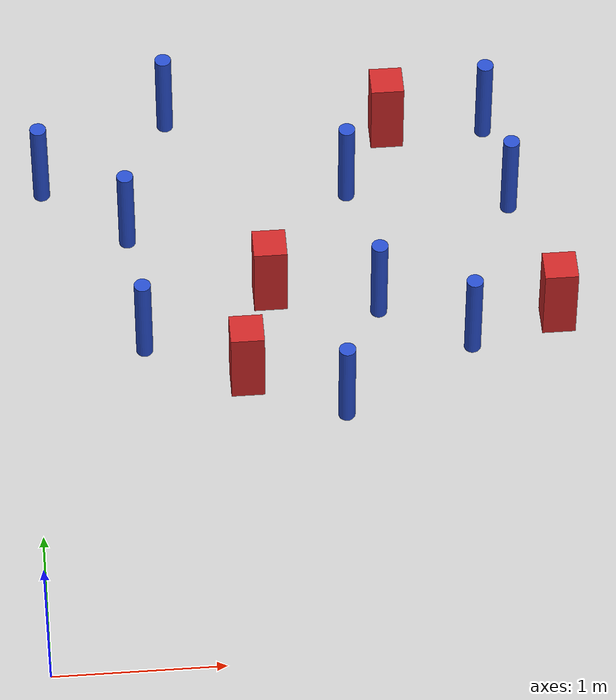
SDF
<sdf version="1.6">
 <world name="default">
  <model name="ground_plane">
   <static>1</static>
   <link name="link">
    <collision name="collision">
     <geometry><plane><normal>0 0 1</normal><size>100 100</size></plane></geometry>
     <surface><friction><ode><mu>100</mu><mu2>50</mu2></ode></friction></surface>
    </collision>
    <visual name="visual">
     <cast_shadows>0</cast_shadows>
     <geometry><plane><normal>0 0 1</normal><size>100 100</size></plane></geometry>
     <material>
      <ambient>1.0 1.0 1.0 1.0</ambient>
      <diffuse>0.8 0.8 0.8 1.0</diffuse>
      <specular>0.01 0.01 0.01 1.000000</specular>
     </material>
    </visual>
   </link>
  </model>
  <model name="square_post_obstacle21">
   <static>true</static>
   <pose>1.26049091219 2.07048775211 8.22691968438e-08 7.2212513382e-06 -7.54495500217e-07 2.29674213826e-05</pose>
   <link name="link">
    <pose>0 0 0.25 0 -0 0</pose>
    <inertial>
     <mass>100</mass>
     <inertia>
      <ixx>0.166667</ixx>
      <ixy>0</ixy>
      <ixz>0</ixz>
      <iyy>0.166667</iyy>
      <iyz>0</iyz>
      <izz>0.166667</izz>
     </inertia>
    </inertial>
    <collision name="collision"><geometry><box><size>.2 .2 .5</size></box></geometry></collision>
    <visual name="visual">
     <geometry><box><size>.2 .2 .5</size></box></geometry>
     <material>
      <script><name>Gazebo/Red</name><uri>file://media/materials/scripts/gazebo.material</uri></script>
     </material>
    </visual>
   </link>
  </model>
  <model name="pole_obstacle15">
   <static>true</static>
   <pose>1.83130481403 1.78242259484 2.88873142074e-08 -9.90536689672e-09 4.60219948993e-07 -1.20965994959e-07</pose>
   <link name="link">
    <pose>0 0 0.3 0 -0 0</pose>
    <inertial>
     <mass>1</mass>
     <inertia><ixx>0.145833</ixx><ixy>0</ixy><ixz>0</ixz><iyy>0.145833</iyy><iyz>0</iyz><izz>0.125</izz></inertia>
    </inertial>
    <collision name="collision">
     <geometry><cylinder><radius>0.05</radius><length>.6</length></cylinder></geometry>
    </collision>
    <visual name="visual">
     <geometry><cylinder><radius>0.05</radius><length>.6</length></cylinder></geometry>
     <material>
      <script><name>Gazebo/Blue</name><uri>file://media/materials/scripts/gazebo.material</uri></script>
     </material>
    </visual>
   </link>
  </model>
  <model name="square_post_obstacle25">
   <static>true</static>
   <pose>2.25905454459 3.99373080349 8.22691968438e-08 7.2212513382e-06 -7.54495500217e-07 2.29674213826e-05</pose>
   <link name="link">
    <pose>0 0 0.25 0 -0 0</pose>
    <inertial>
     <mass>100</mass>
     <inertia>
      <ixx>0.166667</ixx>
      <ixy>0</ixy>
      <ixz>0</ixz>
      <iyy>0.166667</iyy>
      <iyz>0</iyz>
      <izz>0.166667</izz>
     </inertia>
    </inertial>
    <collision name="collision"><geometry><box><size>.2 .2 .5</size></box></geometry></collision>
    <visual name="visual">
     <geometry><box><size>.2 .2 .5</size></box></geometry>
     <material>
      <script><name>Gazebo/Red</name><uri>file://media/materials/scripts/gazebo.material</uri></script>
     </material>
    </visual>
   </link>
  </model>
  <model name="square_post_obstacle38">
   <static>true</static>
   <pose>3.15564290903 2.4173542741 8.22691968438e-08 7.2212513382e-06 -7.54495500217e-07 2.29674213826e-05</pose>
   <link name="link">
    <pose>0 0 0.25 0 -0 0</pose>
    <inertial>
     <mass>100</mass>
     <inertia>
      <ixx>0.166667</ixx>
      <ixy>0</ixy>
      <ixz>0</ixz>
      <iyy>0.166667</iyy>
      <iyz>0</iyz>
      <izz>0.166667</izz>
     </inertia>
    </inertial>
    <collision name="collision"><geometry><box><size>.2 .2 .5</size></box></geometry></collision>
    <visual name="visual">
     <geometry><box><size>.2 .2 .5</size></box></geometry>
     <material>
      <script><name>Gazebo/Red</name><uri>file://media/materials/scripts/gazebo.material</uri></script>
     </material>
    </visual>
   </link>
  </model>
  <model name="pole_obstacle53">
   <static>true</static>
   <pose>2.86539569383 3.97959906179 2.88873142074e-08 -9.90536690801e-09 4.60219948966e-07 -1.20965994976e-07</pose>
   <link name="link">
    <pose>0 0 0.3 0 -0 0</pose>
    <inertial>
     <mass>1</mass>
     <inertia><ixx>0.145833</ixx><ixy>0</ixy><ixz>0</ixz><iyy>0.145833</iyy><iyz>0</iyz><izz>0.125</izz></inertia>
    </inertial>
    <collision name="collision">
     <geometry><cylinder><radius>0.05</radius><length>.6</length></cylinder></geometry>
    </collision>
    <visual name="visual">
     <geometry><cylinder><radius>0.05</radius><length>.6</length></cylinder></geometry>
     <material>
      <script><name>Gazebo/Blue</name><uri>file://media/materials/scripts/gazebo.material</uri></script>
     </material>
    </visual>
   </link>
  </model>
  <model name="pole_obstacle88">
   <static>true</static>
   <pose>2.62601227075 2.24692529022 2.88873142074e-08 -9.90536690232e-09 4.6021994898e-07 -1.20965994968e-07</pose>
   <link name="link">
    <pose>0 0 0.3 0 -0 0</pose>
    <inertial>
     <mass>1</mass>
     <inertia><ixx>0.145833</ixx><ixy>0</ixy><ixz>0</ixz><iyy>0.145833</iyy><iyz>0</iyz><izz>0.125</izz></inertia>
    </inertial>
    <collision name="collision">
     <geometry><cylinder><radius>0.05</radius><length>.6</length></cylinder></geometry>
    </collision>
    <visual name="visual">
     <geometry><cylinder><radius>0.05</radius><length>.6</length></cylinder></geometry>
     <material>
      <script><name>Gazebo/Blue</name><uri>file://media/materials/scripts/gazebo.material</uri></script>
     </material>
    </visual>
   </link>
  </model>
  <model name="pole_obstacle111">
   <static>true</static>
   <pose>2.95857027693 3.33795565764 2.88873142074e-08 -9.90536690232e-09 4.6021994898e-07 -1.20965994968e-07</pose>
   <link name="link">
    <pose>0 0 0.3 0 -0 0</pose>
    <inertial>
     <mass>1</mass>
     <inertia><ixx>0.145833</ixx><ixy>0</ixy><ixz>0</ixz><iyy>0.145833</iyy><iyz>0</iyz><izz>0.125</izz></inertia>
    </inertial>
    <collision name="collision">
     <geometry><cylinder><radius>0.05</radius><length>.6</length></cylinder></geometry>
    </collision>
    <visual name="visual">
     <geometry><cylinder><radius>0.05</radius><length>.6</length></cylinder></geometry>
     <material>
      <script><name>Gazebo/Blue</name><uri>file://media/materials/scripts/gazebo.material</uri></script>
     </material>
    </visual>
   </link>
  </model>
  <model name="pole_obstacle127">
   <static>true</static>
   <pose>2.09037619163 2.56489498638 2.88873142074e-08 -9.90536690232e-09 4.6021994898e-07 -1.20965994968e-07</pose>
   <link name="link">
    <pose>0 0 0.3 0 -0 0</pose>
    <inertial>
     <mass>1</mass>
     <inertia><ixx>0.145833</ixx><ixy>0</ixy><ixz>0</ixz><iyy>0.145833</iyy><iyz>0</iyz><izz>0.125</izz></inertia>
    </inertial>
    <collision name="collision">
     <geometry><cylinder><radius>0.05</radius><length>.6</length></cylinder></geometry>
    </collision>
    <visual name="visual">
     <geometry><cylinder><radius>0.05</radius><length>.6</length></cylinder></geometry>
     <material>
      <script><name>Gazebo/Blue</name><uri>file://media/materials/scripts/gazebo.material</uri></script>
     </material>
    </visual>
   </link>
  </model>
  <model name="pole_obstacle138">
   <static>true</static>
   <pose>0.104031653515 3.65919974538 2.88873142074e-08 -9.90536689907e-09 4.60219948988e-07 -1.20965994961e-07</pose>
   <link name="link">
    <pose>0 0 0.3 0 -0 0</pose>
    <inertial>
     <mass>1</mass>
     <inertia><ixx>0.145833</ixx><ixy>0</ixy><ixz>0</ixz><iyy>0.145833</iyy><iyz>0</iyz><izz>0.125</izz></inertia>
    </inertial>
    <collision name="collision">
     <geometry><cylinder><radius>0.05</radius><length>.6</length></cylinder></geometry>
    </collision>
    <visual name="visual">
     <geometry><cylinder><radius>0.05</radius><length>.6</length></cylinder></geometry>
     <material>
      <script><name>Gazebo/Blue</name><uri>file://media/materials/scripts/gazebo.material</uri></script>
     </material>
    </visual>
   </link>
  </model>
  <model name="pole_obstacle142">
   <static>true</static>
   <pose>0.6092676729 3.23554377102 2.88873142074e-08 -9.90536689636e-09 4.60219948994e-07 -1.20965994958e-07</pose>
   <link name="link">
    <pose>0 0 0.3 0 -0 0</pose>
    <inertial>
     <mass>1</mass>
     <inertia><ixx>0.145833</ixx><ixy>0</ixy><ixz>0</ixz><iyy>0.145833</iyy><iyz>0</iyz><izz>0.125</izz></inertia>
    </inertial>
    <collision name="collision">
     <geometry><cylinder><radius>0.05</radius><length>.6</length></cylinder></geometry>
    </collision>
    <visual name="visual">
     <geometry><cylinder><radius>0.05</radius><length>.6</length></cylinder></geometry>
     <material>
      <script><name>Gazebo/Blue</name><uri>file://media/materials/scripts/gazebo.material</uri></script>
     </material>
    </visual>
   </link>
  </model>
  <model name="square_post_obstacle131">
   <static>true</static>
   <pose>1.44350993888 2.72549859322 8.22691968438e-08 7.2212513382e-06 -7.54495500217e-07 2.29674213826e-05</pose>
   <link name="link">
    <pose>0 0 0.25 0 -0 0</pose>
    <inertial>
     <mass>100</mass>
     <inertia>
      <ixx>0.166667</ixx>
      <ixy>0</ixy>
      <ixz>0</ixz>
      <iyy>0.166667</iyy>
      <iyz>0</iyz>
      <izz>0.166667</izz>
     </inertia>
    </inertial>
    <collision name="collision"><geometry><box><size>.2 .2 .5</size></box></geometry></collision>
    <visual name="visual">
     <geometry><box><size>.2 .2 .5</size></box></geometry>
     <material>
      <script><name>Gazebo/Red</name><uri>file://media/materials/scripts/gazebo.material</uri></script>
     </material>
    </visual>
   </link>
  </model>
  <model name="pole_obstacle181">
   <static>true</static>
   <pose>0.894329092786 4.17688765331 2.88873142074e-08 -9.90536689661e-09 4.60219948993e-07 -1.20965994957e-07</pose>
   <link name="link">
    <pose>0 0 0.3 0 -0 0</pose>
    <inertial>
     <mass>1</mass>
     <inertia><ixx>0.145833</ixx><ixy>0</ixy><ixz>0</ixz><iyy>0.145833</iyy><iyz>0</iyz><izz>0.125</izz></inertia>
    </inertial>
    <collision name="collision">
     <geometry><cylinder><radius>0.05</radius><length>.6</length></cylinder></geometry>
    </collision>
    <visual name="visual">
     <geometry><cylinder><radius>0.05</radius><length>.6</length></cylinder></geometry>
     <material>
      <script><name>Gazebo/Blue</name><uri>file://media/materials/scripts/gazebo.material</uri></script>
     </material>
    </visual>
   </link>
  </model>
  <model name="pole_obstacle202">
   <static>true</static>
   <pose>0.66579298376 2.36758578003 2.88873142074e-08 -9.90536689636e-09 4.60219948994e-07 -1.20965994958e-07</pose>
   <link name="link">
    <pose>0 0 0.3 0 -0 0</pose>
    <inertial>
     <mass>1</mass>
     <inertia><ixx>0.145833</ixx><ixy>0</ixy><ixz>0</ixz><iyy>0.145833</iyy><iyz>0</iyz><izz>0.125</izz></inertia>
    </inertial>
    <collision name="collision">
     <geometry><cylinder><radius>0.05</radius><length>.6</length></cylinder></geometry>
    </collision>
    <visual name="visual">
     <geometry><cylinder><radius>0.05</radius><length>.6</length></cylinder></geometry>
     <material>
      <script><name>Gazebo/Blue</name><uri>file://media/materials/scripts/gazebo.material</uri></script>
     </material>
    </visual>
   </link>
  </model>
  <model name="pole_obstacle222">
   <static>true</static>
   <pose>1.97313000913 3.51384002041 2.88873142074e-08 -9.90536689709e-09 4.60219948992e-07 -1.20965994957e-07</pose>
   <link name="link">
    <pose>0 0 0.3 0 -0 0</pose>
    <inertial>
     <mass>1</mass>
     <inertia><ixx>0.145833</ixx><ixy>0</ixy><ixz>0</ixz><iyy>0.145833</iyy><iyz>0</iyz><izz>0.125</izz></inertia>
    </inertial>
    <collision name="collision">
     <geometry><cylinder><radius>0.05</radius><length>.6</length></cylinder></geometry>
    </collision>
    <visual name="visual">
     <geometry><cylinder><radius>0.05</radius><length>.6</length></cylinder></geometry>
     <material>
      <script><name>Gazebo/Blue</name><uri>file://media/materials/scripts/gazebo.material</uri></script>
     </material>
    </visual>
   </link>
  </model>
 </world>
</sdf>
